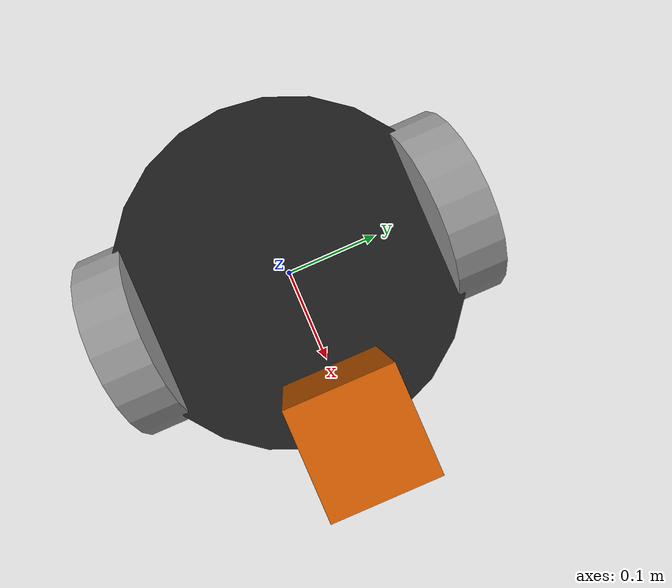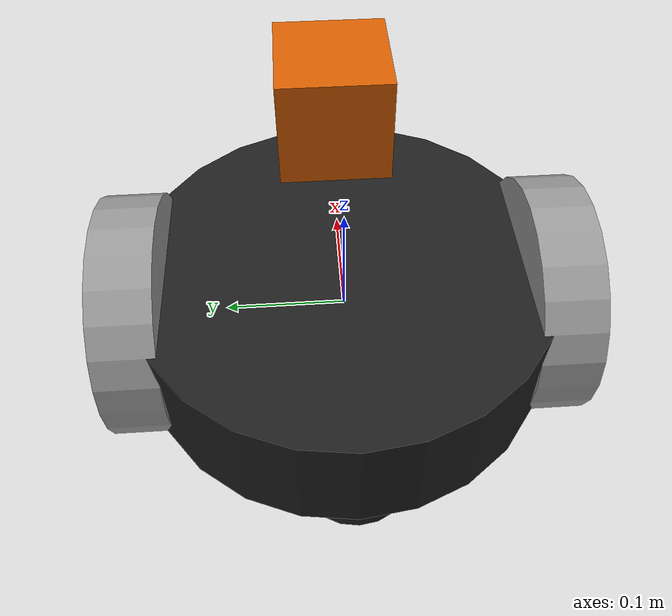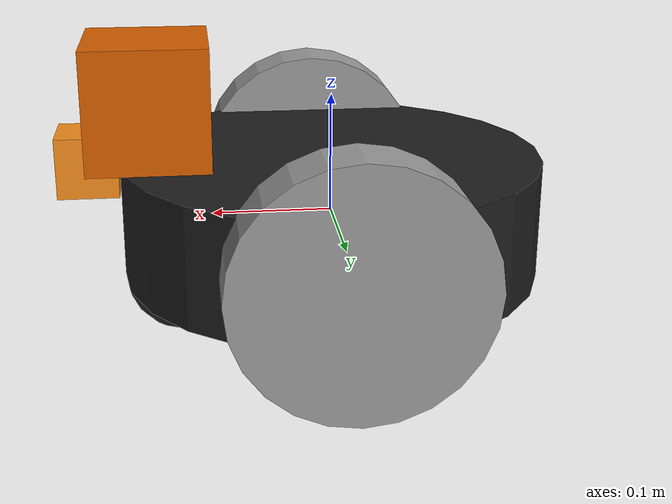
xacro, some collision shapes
<?xml version='1.0'?>

<robot name="my_robot" xmlns:xacro="http://www.ros.org/wiki/xacro">
	<xacro:include filename="$(find my_robot)/urdf/my_robot.gazebo" />

  <link name="robot_footprint"></link>

  <joint name="robot_footprint_joint" type="fixed">
    <origin xyz="0 0 0" rpy="0 0 0" />
    <parent link="robot_footprint"/>
    <child link="chassis" />
  </joint>

  <link name='chassis'>
    <pose>0 0 0.1 0 0 0</pose>

    <inertial>
      <mass value="4.0"/>
      <origin xyz="0.0 0 0" rpy=" 0 0 0"/>
      <inertia
          ixx="0.1" ixy="0" ixz="0"
          iyy="0.1" iyz="0"
          izz="0.1"
      />
    </inertial>

    <collision name='collision'>
      <origin xyz="0 0 0" rpy=" 0 0 0"/>
      <geometry>
        <cylinder radius="0.175" length="0.10"/>
      </geometry>
    </collision>

    <visual name='chassis_visual'>
      <origin xyz="0 0 0" rpy=" 0 0 0"/>
      <geometry>
        <cylinder radius="0.175" length="0.10"/>
      </geometry>
    </visual>

    <collision name='back_caster_collision'>
      <origin xyz="-0.125 0 -0.05" rpy=" 0 0 0"/>
      <geometry>
        <sphere radius="0.0499"/>
      </geometry>
    </collision>

    <visual name='back_caster_visual'>
      <origin xyz="-0.125 0 -0.05" rpy=" 0 0 0"/>
      <geometry>
        <sphere radius="0.05"/>
      </geometry>
    </visual>

    <collision name='front_caster_collision'>
      <origin xyz="0.125 0 -0.05" rpy=" 0 0 0"/>
      <geometry>
        <sphere radius="0.0499"/>
      </geometry>
    </collision>

    <visual name='front_caster_visual'>
      <origin xyz="0.125 0 -0.05" rpy=" 0 0 0"/>
      <geometry>
        <sphere radius="0.05"/>
      </geometry>
    </visual>

  </link>
  <link name='left_wheel'>
  	 <inertial>
      <mass value="0.25"/>
      <origin xyz="0.0 0 0" rpy=" 0 1.5707 1.5707"/>
      <inertia
          ixx="0.1" ixy="0" ixz="0"
          iyy="0.1" iyz="0"
          izz="0.1"
      />
    </inertial>

    <collision name='left_wheel_collision'>
      <origin xyz="0 0 0" rpy=" 0 1.5707 1.5707"/>
      <geometry>
        <cylinder radius="0.1" length="0.05"/>
      </geometry>
    </collision>

    <visual name='left_wheel__visual'>
      <origin xyz="0 0 0" rpy=" 0 1.5707 1.5707"/>
      <geometry>
        <cylinder radius="0.1" length="0.05"/>
      </geometry>
    </visual>
  </link>
  <link name='right_wheel'>
  	 <inertial>
      <mass value="0.25"/>
      <origin xyz="0.0 0 0" rpy=" 0 1.5707 1.5707"/>
      <inertia
          ixx="0.1" ixy="0" ixz="0"
          iyy="0.1" iyz="0"
          izz="0.1"
      />
    </inertial>

    <collision name='right_wheel_collision'>
      <origin xyz="0 0 0" rpy=" 0 1.5707 1.5707"/>
      <geometry>
        <cylinder radius="0.1" length="0.05"/>
      </geometry>
    </collision>

    <visual name='right_wheel__visual'>
      <origin xyz="0 0 0" rpy=" 0 1.5707 1.5707"/>
      <geometry>
        <cylinder radius="0.1" length="0.05"/>
      </geometry>
    </visual>
  </link>
  <joint type="continuous" name="left_wheel_hinge">
    <origin xyz="0 0.17 0" rpy="0 0 0"/>
    <child link="left_wheel"/>
    <parent link="chassis"/>
    <axis xyz="0 1 0" rpy="0 0 0"/>
    <limit effort="10000" velocity="1000"/>
    <dynamics damping="1.0" friction="1.0"/>
  </joint>
  <joint type="continuous" name="right_wheel_hinge">
    <origin xyz="0 -0.17 0" rpy="0 0 0"/>
    <child link="right_wheel"/>
    <parent link="chassis"/>
    <axis xyz="0 1 0" rpy="0 0 0"/>
    <limit effort="10000" velocity="1000"/>
    <dynamics damping="1.0" friction="1.0"/>
  </joint>
  <link name='front_camera'>
  	<inertial>
      <mass value="0.1"/>
      <origin xyz="0.0 0 0" rpy=" 0 0 0"/>
      <inertia
          ixx="1e-6" ixy="0" ixz="0"
          iyy="1e-6" iyz="0"
          izz="1e-6"
      />
    </inertial>

    <collision name='camera_box'>
      <origin xyz="0 0 0" rpy=" 0 0 0"/>
      <geometry>
        <box size="0.05 0.05 0.05"/>
      </geometry>
    </collision>

    <visual>
      <origin xyz="0 0 0" rpy=" 0 0 0"/>
      <geometry>
        <box size="0.05 0.05 0.05"/>
      </geometry>
    </visual>
  </link>
  <joint type="fixed" name="camera_joint">
    <origin xyz="0.2 0 0.05" rpy="0 0 0"/>
    <child link="front_camera"/>
    <parent link="chassis"/>
    <axis xyz="0 1 0" rpy="0 0 0"/>
  </joint>
  <link name='hokuyo'>
  	<inertial>
      <mass value="1e-5"/>
      <origin xyz="0.0 0 0" rpy="0 0 0"/>
      <inertia
          ixx="1e-6" ixy="0" ixz="0"
          iyy="1e-6" iyz="0"
          izz="1e-6"
      />
    </inertial>

    <collision name='hokuyo_box'>
      <origin xyz="0 0 0" rpy="0 0 0"/>
      <geometry>
        <box size="0.1 0.1 0.1"/>
      </geometry>
    </collision>

    <visual>
      <origin xyz="0 0 0" rpy="0 0 0"/>
      <geometry>
      	<mesh filename="package://my_robot/meshes/hokuyo.dae"/>
      </geometry>
    </visual>
  </link>
  <joint type="fixed" name="hokuyo_joint">
    <origin xyz="0.15 0 0.1" rpy="0 0 0"/>
    <child link="hokuyo"/>
    <parent link="chassis"/>
    <axis xyz="0 1 0" rpy="0 0 0"/>
  </joint>
  <gazebo reference="chassis">
    <material>Gazebo/Black</material>
  </gazebo>
  <gazebo reference="left_wheel">
    <material>Gazebo/Gray</material>
  </gazebo>
  <gazebo reference="right_wheel">
    <material>Gazebo/Gray</material>
  </gazebo>
  <gazebo reference="front_camera">
    <material>Gazebo/Orange</material>
  </gazebo>
</robot>
